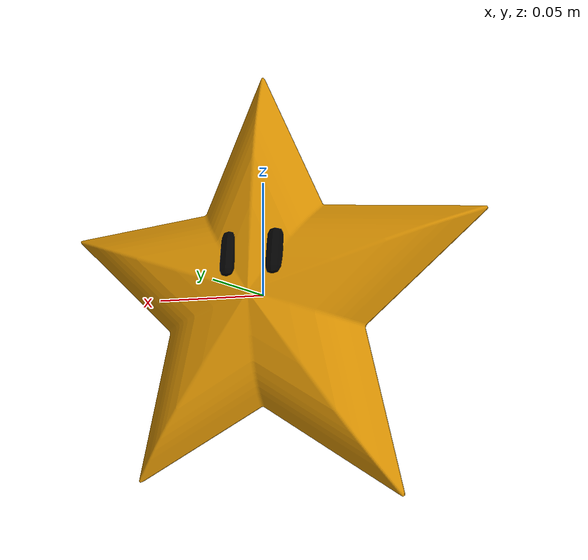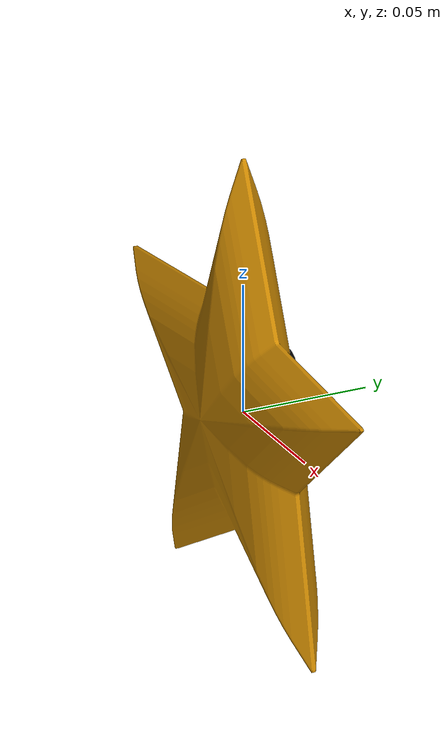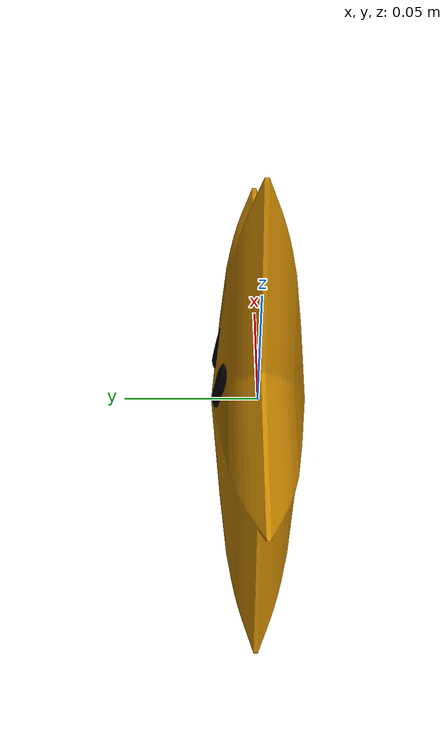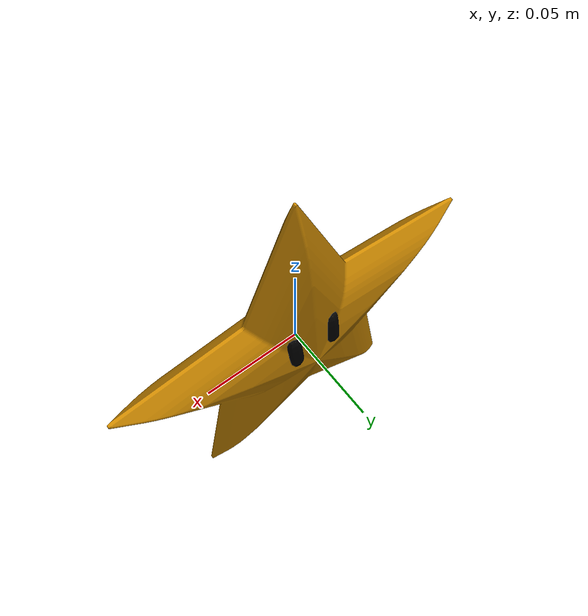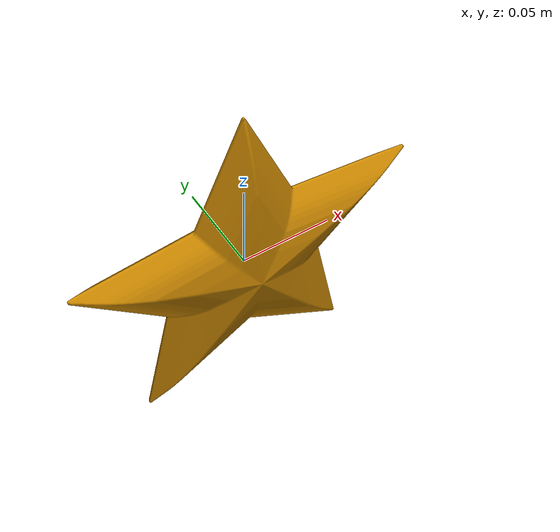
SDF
<?xml version="1.0" ?>
<sdf version="1.5">
  <model name="plumbing">
    <static>true</static>
    <link name="link">
      <collision name="collision">
        <pose>0 0 0 0 0 0</pose>
        <geometry>
          <mesh>
            <uri>meshes/collision.stl</uri>
          </mesh>
        </geometry>
      </collision>
      <visual name="visual">
        <pose>0 0 0 0 0 0</pose>
        <geometry>
          <mesh>
            <uri>meshes/visual.dae</uri>
          </mesh>
        </geometry>
      </visual>
    </link>
  </model>
</sdf>
